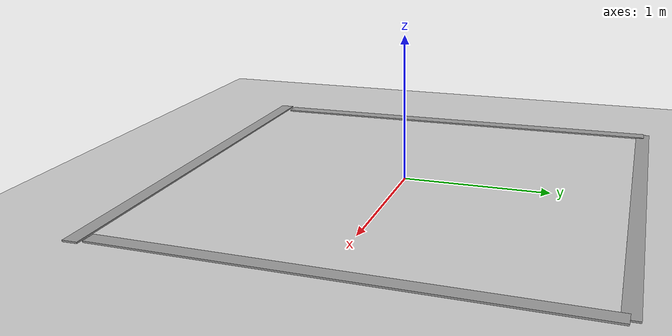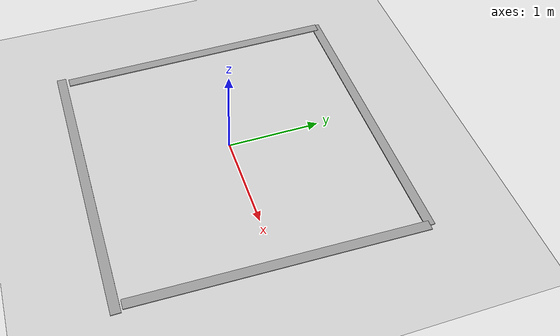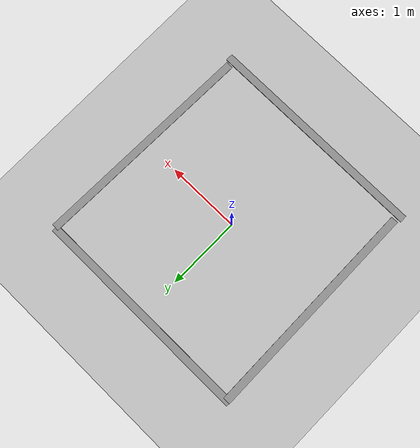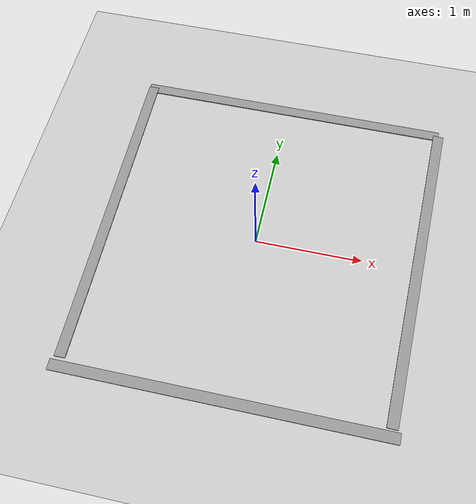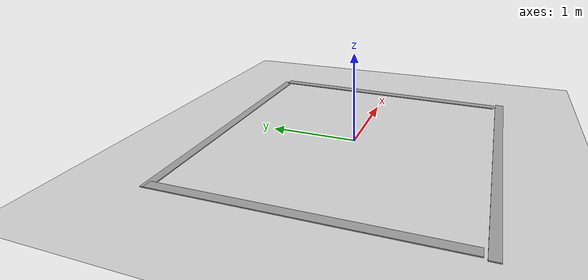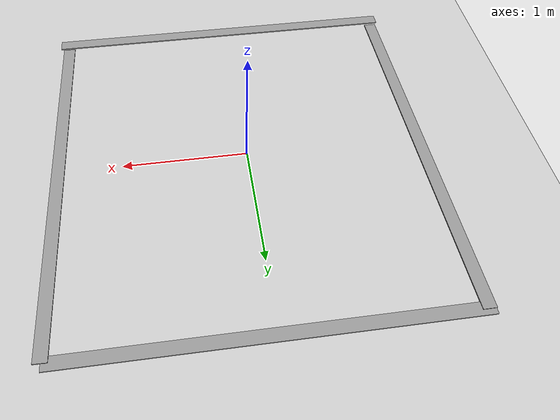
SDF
<sdf version="1.7">
 <world name="default">
  <model name="ground_plane">
   <static>1</static>
   <link name="link">
    <collision name="collision">
     <geometry><plane><normal>0 0 1</normal><size>1 1</size></plane></geometry>
     <surface><friction><ode><mu>100</mu><mu2>50</mu2></ode></friction></surface>
    </collision>
    <visual name="visual">
     <cast_shadows>0</cast_shadows>
     <geometry><plane><normal>0 0 1</normal><size>100 100</size></plane></geometry>
     <material>
      <script><uri>file://media/materials/scripts/gazebo.material</uri><name>Gazebo/Grey</name></script>
     </material>
    </visual>
   </link>
  </model>
  <light name="sun" type="directional">
   <pose>0 0 10 0 -0 0</pose>
   <diffuse>0.8 0.8 0.8 1</diffuse>
   <specular>0.2 0.2 0.2 1</specular>
   <attenuation>
    <range>1000</range>
    <constant>0.9</constant>
    <linear>0.01</linear>
    <quadratic>0.001</quadratic>
   </attenuation>
   <direction>-0.5 0.1 -0.9</direction>
   <spot><inner_angle>0</inner_angle><outer_angle>0</outer_angle><falloff>0</falloff></spot>
  </light>
  <scene><shadows>0</shadows><ambient>0.4 0.4 0.4 1</ambient><background>0.7 0.7 0.7 1</background></scene>
  <physics type="ode">
   <real_time_update_rate>1000</real_time_update_rate>
   <max_step_size>0.001</max_step_size>
   <real_time_factor>1</real_time_factor>
   <ode>
    <solver>
     <type>quick</type>
     <iters>150</iters>
     <precon_iters>0</precon_iters>
     <sor>1.4</sor>
     <use_dynamic_moi_rescaling>1</use_dynamic_moi_rescaling>
    </solver>
    <constraints>
     <cfm>1e-05</cfm>
     <erp>0.2</erp>
     <contact_max_correcting_vel>2000</contact_max_correcting_vel>
     <contact_surface_layer>0.01</contact_surface_layer>
    </constraints>
   </ode>
  </physics>
  <gravity>0 0 -9.8</gravity>
  <magnetic_field>6e-06 2.3e-05 -4.2e-05</magnetic_field>
  <atmosphere type="adiabatic"/>
  <audio><device>default</device></audio>
  <spherical_coordinates>
   <surface_model>EARTH_WGS84</surface_model>
   <latitude_deg>0</latitude_deg>
   <longitude_deg>0</longitude_deg>
   <elevation>0</elevation>
   <heading_deg>0</heading_deg>
  </spherical_coordinates>
  <model name="straight_line_mark_black">
   <link name="link">
    <inertial>
     <mass>1</mass>
     <inertia>
      <ixx>0.166667</ixx>
      <ixy>0</ixy>
      <ixz>0</ixz>
      <iyy>0.166667</iyy>
      <iyz>0</iyz>
      <izz>0.166667</izz>
     </inertia>
    </inertial>
    <visual name="visual">
     <geometry><box><size>3.03403 0.100527 0.010805</size></box></geometry>
     <material>
      <script><name>Gazebo/Grey</name><uri>file://media/materials/scripts/gazebo.material</uri></script>
      <shader type="pixel"><normal_map>__default__</normal_map></shader>
      <ambient>0.3 0.3 0.3 1</ambient>
      <diffuse>0 0 0 1</diffuse>
      <specular>0.01 0.01 0.01 1</specular>
      <emissive>0 0 0 1</emissive>
     </material>
    </visual>
    <collision name="collision">
     <geometry><box><size>3.03403 0.100527 0.010805</size></box></geometry>
     <surface>
      <friction>
       <ode><mu>1</mu><mu2>1</mu2><fdir1>0 0 0</fdir1><slip1>0</slip1><slip2>0</slip2></ode>
       <torsional>
        <coefficient>1</coefficient>
        <patch_radius>0</patch_radius>
        <surface_radius>0</surface_radius>
        <use_patch_radius>1</use_patch_radius>
        <ode><slip>0</slip></ode>
       </torsional>
      </friction>
      <bounce><restitution_coefficient>0</restitution_coefficient><threshold>1e+06</threshold></bounce>
      <contact>
       <collide_without_contact>0</collide_without_contact>
       <collide_without_contact_bitmask>1</collide_without_contact_bitmask>
       <collide_bitmask>1</collide_bitmask>
       <ode>
        <soft_cfm>0</soft_cfm>
        <soft_erp>0.2</soft_erp>
        <kp>1e+13</kp>
        <kd>1</kd>
        <max_vel>0.01</max_vel>
        <min_depth>0</min_depth>
       </ode>
       <bullet>
        <split_impulse>1</split_impulse>
        <split_impulse_penetration_threshold>-0.01</split_impulse_penetration_threshold>
        <soft_cfm>0</soft_cfm>
        <soft_erp>0.2</soft_erp>
        <kp>1e+13</kp>
        <kd>1</kd>
       </bullet>
      </contact>
     </surface>
    </collision>
   </link>
   <static>1</static>
   <pose>0.029754 1.56197 0 0 -0 0</pose>
  </model>
  <model name="straight_line_mark_black_clone">
   <link name="link">
    <inertial>
     <mass>1</mass>
     <inertia>
      <ixx>0.166667</ixx>
      <ixy>0</ixy>
      <ixz>0</ixz>
      <iyy>0.166667</iyy>
      <iyz>0</iyz>
      <izz>0.166667</izz>
     </inertia>
    </inertial>
    <visual name="visual">
     <geometry><box><size>3.03403 0.100527 0.010805</size></box></geometry>
     <material>
      <script><name>Gazebo/Grey</name><uri>file://media/materials/scripts/gazebo.material</uri></script>
      <shader type="pixel"><normal_map>__default__</normal_map></shader>
      <ambient>0.3 0.3 0.3 1</ambient>
      <diffuse>0 0 0 1</diffuse>
      <specular>0.01 0.01 0.01 1</specular>
      <emissive>0 0 0 1</emissive>
     </material>
    </visual>
    <collision name="collision">
     <geometry><box><size>3.03403 0.100527 0.010805</size></box></geometry>
     <surface>
      <friction>
       <ode><mu>1</mu><mu2>1</mu2><fdir1>0 0 0</fdir1><slip1>0</slip1><slip2>0</slip2></ode>
       <torsional>
        <coefficient>1</coefficient>
        <patch_radius>0</patch_radius>
        <surface_radius>0</surface_radius>
        <use_patch_radius>1</use_patch_radius>
        <ode><slip>0</slip></ode>
       </torsional>
      </friction>
      <bounce><restitution_coefficient>0</restitution_coefficient><threshold>1e+06</threshold></bounce>
      <contact>
       <collide_without_contact>0</collide_without_contact>
       <collide_without_contact_bitmask>1</collide_without_contact_bitmask>
       <collide_bitmask>1</collide_bitmask>
       <ode>
        <soft_cfm>0</soft_cfm>
        <soft_erp>0.2</soft_erp>
        <kp>1e+13</kp>
        <kd>1</kd>
        <max_vel>0.01</max_vel>
        <min_depth>0</min_depth>
       </ode>
       <bullet>
        <split_impulse>1</split_impulse>
        <split_impulse_penetration_threshold>-0.01</split_impulse_penetration_threshold>
        <soft_cfm>0</soft_cfm>
        <soft_erp>0.2</soft_erp>
        <kp>1e+13</kp>
        <kd>1</kd>
       </bullet>
      </contact>
     </surface>
    </collision>
   </link>
   <static>1</static>
   <pose>0.031917 -1.54333 0.005414 -0.000224 0 0</pose>
  </model>
  <model name="straight_line_mark_black_clone_0">
   <link name="link">
    <inertial>
     <mass>1</mass>
     <inertia>
      <ixx>0.166667</ixx>
      <ixy>0</ixy>
      <ixz>0</ixz>
      <iyy>0.166667</iyy>
      <iyz>0</iyz>
      <izz>0.166667</izz>
     </inertia>
    </inertial>
    <visual name="visual">
     <geometry><box><size>3.03403 0.100527 0.010805</size></box></geometry>
     <material>
      <script><name>Gazebo/Grey</name><uri>file://media/materials/scripts/gazebo.material</uri></script>
      <shader type="pixel"><normal_map>__default__</normal_map></shader>
      <ambient>0.3 0.3 0.3 1</ambient>
      <diffuse>0 0 0 1</diffuse>
      <specular>0.01 0.01 0.01 1</specular>
      <emissive>0 0 0 1</emissive>
     </material>
    </visual>
    <collision name="collision">
     <geometry><box><size>3.03403 0.100527 0.010805</size></box></geometry>
     <surface>
      <friction>
       <ode><mu>1</mu><mu2>1</mu2><fdir1>0 0 0</fdir1><slip1>0</slip1><slip2>0</slip2></ode>
       <torsional>
        <coefficient>1</coefficient>
        <patch_radius>0</patch_radius>
        <surface_radius>0</surface_radius>
        <use_patch_radius>1</use_patch_radius>
        <ode><slip>0</slip></ode>
       </torsional>
      </friction>
      <bounce><restitution_coefficient>0</restitution_coefficient><threshold>1e+06</threshold></bounce>
      <contact>
       <collide_without_contact>0</collide_without_contact>
       <collide_without_contact_bitmask>1</collide_without_contact_bitmask>
       <collide_bitmask>1</collide_bitmask>
       <ode>
        <soft_cfm>0</soft_cfm>
        <soft_erp>0.2</soft_erp>
        <kp>1e+13</kp>
        <kd>1</kd>
        <max_vel>0.01</max_vel>
        <min_depth>0</min_depth>
       </ode>
       <bullet>
        <split_impulse>1</split_impulse>
        <split_impulse_penetration_threshold>-0.01</split_impulse_penetration_threshold>
        <soft_cfm>0</soft_cfm>
        <soft_erp>0.2</soft_erp>
        <kp>1e+13</kp>
        <kd>1</kd>
       </bullet>
      </contact>
     </surface>
    </collision>
   </link>
   <static>1</static>
   <pose>-1.42622 0.053169 0.005414 2e-06 0.000224 1.58079</pose>
  </model>
  <model name="straight_line_mark_black_clone_0_clone">
   <link name="link">
    <inertial>
     <mass>1</mass>
     <inertia>
      <ixx>0.166667</ixx>
      <ixy>0</ixy>
      <ixz>0</ixz>
      <iyy>0.166667</iyy>
      <iyz>0</iyz>
      <izz>0.166667</izz>
     </inertia>
    </inertial>
    <visual name="visual">
     <geometry><box><size>3.03403 0.100527 0.010805</size></box></geometry>
     <material>
      <script><name>Gazebo/Grey</name><uri>file://media/materials/scripts/gazebo.material</uri></script>
      <shader type="pixel"><normal_map>__default__</normal_map></shader>
      <ambient>0.3 0.3 0.3 1</ambient>
      <diffuse>0 0 0 1</diffuse>
      <specular>0.01 0.01 0.01 1</specular>
      <emissive>0 0 0 1</emissive>
     </material>
    </visual>
    <collision name="collision">
     <geometry><box><size>3.03403 0.100527 0.010805</size></box></geometry>
     <surface>
      <friction>
       <ode><mu>1</mu><mu2>1</mu2><fdir1>0 0 0</fdir1><slip1>0</slip1><slip2>0</slip2></ode>
       <torsional>
        <coefficient>1</coefficient>
        <patch_radius>0</patch_radius>
        <surface_radius>0</surface_radius>
        <use_patch_radius>1</use_patch_radius>
        <ode><slip>0</slip></ode>
       </torsional>
      </friction>
      <bounce><restitution_coefficient>0</restitution_coefficient><threshold>1e+06</threshold></bounce>
      <contact>
       <collide_without_contact>0</collide_without_contact>
       <collide_without_contact_bitmask>1</collide_without_contact_bitmask>
       <collide_bitmask>1</collide_bitmask>
       <ode>
        <soft_cfm>0</soft_cfm>
        <soft_erp>0.2</soft_erp>
        <kp>1e+13</kp>
        <kd>1</kd>
        <max_vel>0.01</max_vel>
        <min_depth>0</min_depth>
       </ode>
       <bullet>
        <split_impulse>1</split_impulse>
        <split_impulse_penetration_threshold>-0.01</split_impulse_penetration_threshold>
        <soft_cfm>0</soft_cfm>
        <soft_erp>0.2</soft_erp>
        <kp>1e+13</kp>
        <kd>1</kd>
       </bullet>
      </contact>
     </surface>
    </collision>
   </link>
   <static>1</static>
   <pose>1.50933 0.041299 0.005181 5.6e-05 -0.001267 1.54592</pose>
  </model>
 </world>
</sdf>
